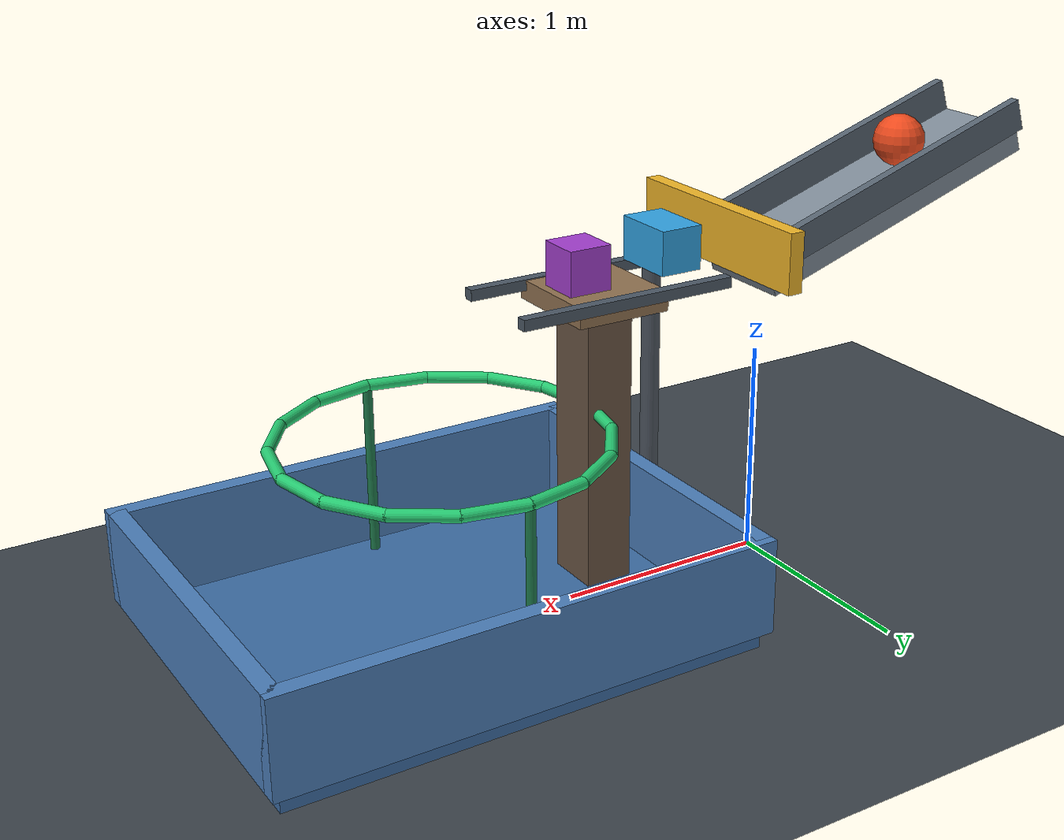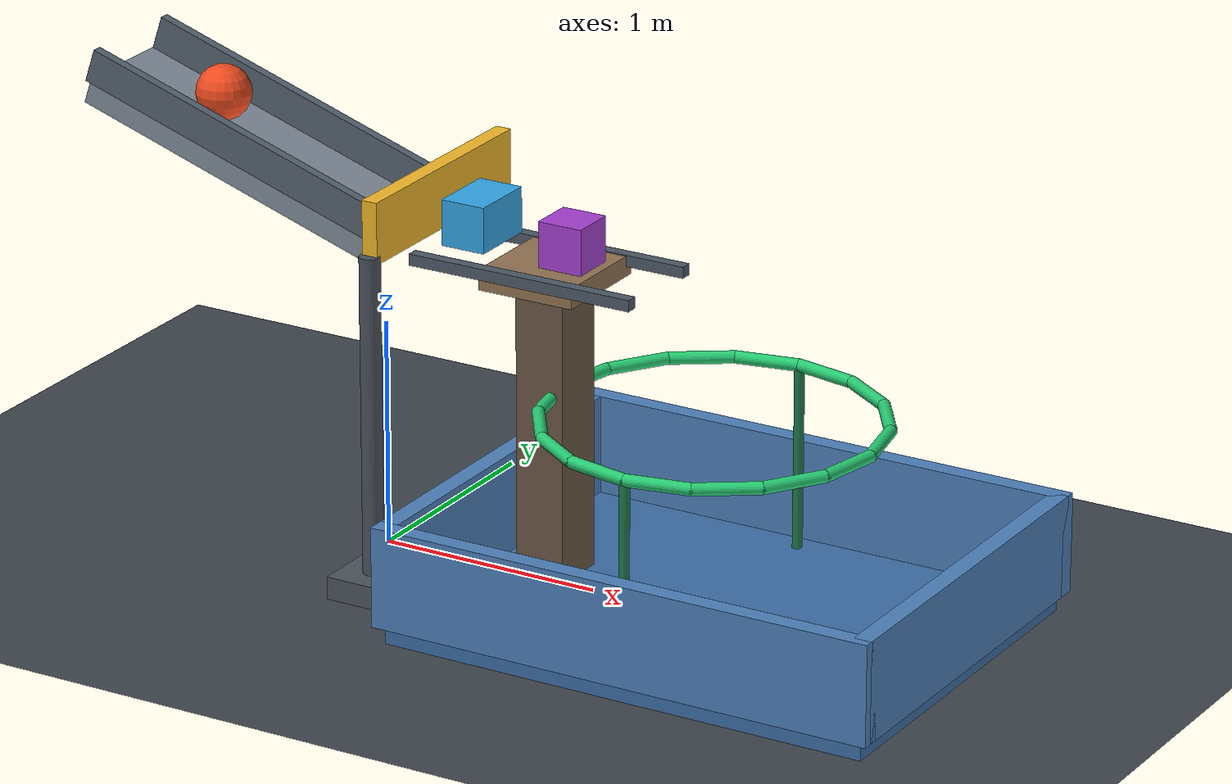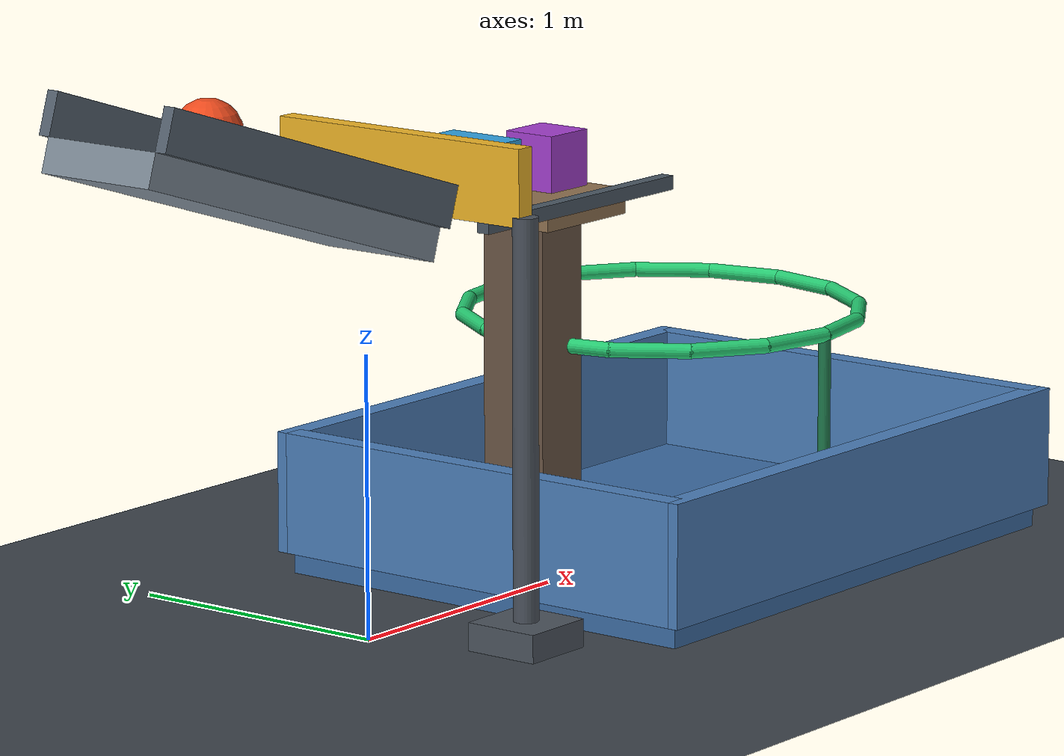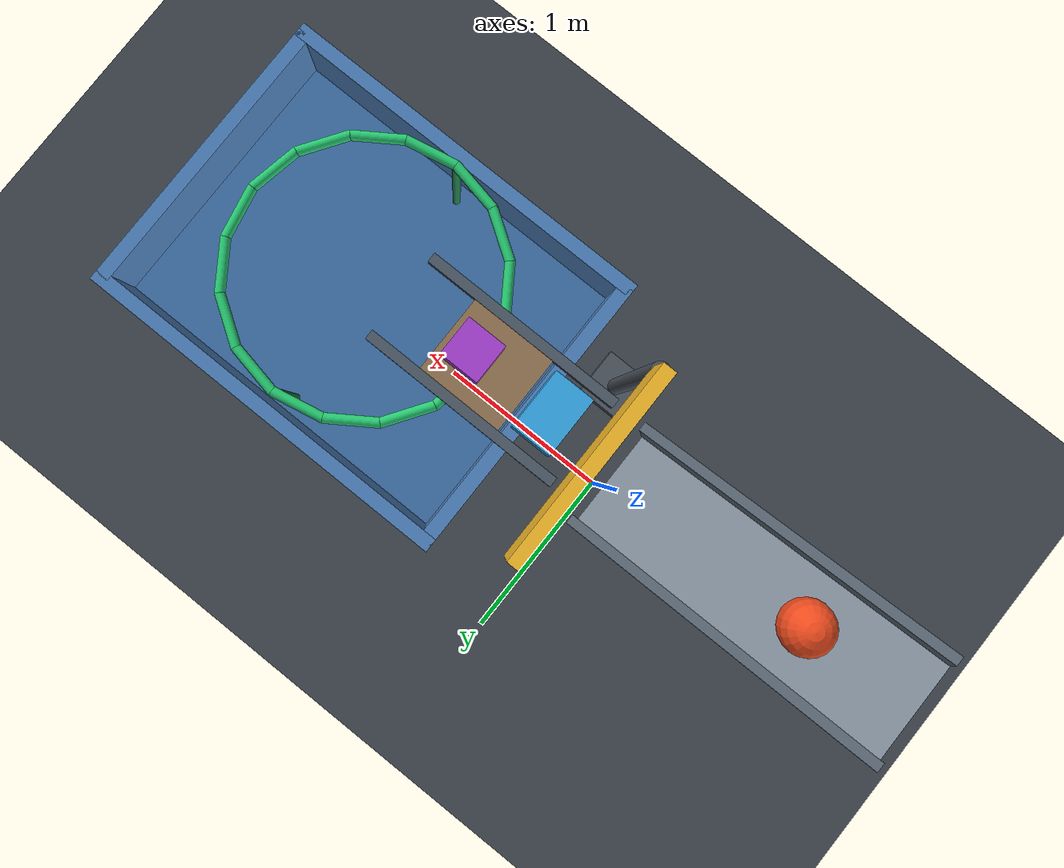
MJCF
<mujoco model="ball_paddle_slider_drop">
  <compiler angle="radian" autolimits="true"/>
  <option timestep="0.002" gravity="0 0 -9.81" integrator="implicitfast" iterations="80"/>
  <size njmax="1500" nconmax="300"/>
  <visual>
    <headlight ambient="0.35 0.35 0.35" diffuse="0.75 0.75 0.75" specular="0.15 0.15 0.15"/>
  </visual>

  <worldbody>
    <light name="overhead" pos="0 -2 5" dir="0 0 -1" diffuse="0.8 0.8 0.8"/>
    <camera name="overview" pos="4 -6 3.8" xyaxes="0.857 0.514 0 -0.220 0.366 0.904"/>

    <geom name="floor" type="plane" size="8 5 0.1" friction="1.0 0.02 0.08" condim="6" priority="1" solref="0.012 1" rgba="0.24 0.27 0.30 1"/>

    <!-- The ball's starting contact point is one metre uphill from the ramp's lower end. -->
    <body name="ramp" pos="-0.593292 0 1.681763" quat="0.987688341 0 0.156434465 0">
      <geom name="ramp_surface" type="box" pos="0 0 -0.06" size="0.75 0.23 0.06" friction="0.7 0.005 0.0002" condim="6" priority="2" solref="0.01 1" rgba="0.50 0.55 0.60 1"/>
      <geom name="ramp_rail_left" type="box" pos="0 0.25 0.075" size="0.75 0.022 0.075" friction="0.4 0.005 0.0002" condim="6" priority="2" rgba="0.34 0.39 0.44 1"/>
      <geom name="ramp_rail_right" type="box" pos="0 -0.25 0.075" size="0.75 0.022 0.075" friction="0.4 0.005 0.0002" condim="6" priority="2" rgba="0.34 0.39 0.44 1"/>
    </body>

    <body name="ball" pos="-0.793975 0 1.873144">
      <freejoint name="ball_free"/>
      <geom name="ball_geom" type="sphere" size="0.12" mass="3" friction="0.7 0.015 0.06" condim="6" solref="0.01 1" rgba="0.95 0.30 0.12 1"/>
    </body>

    <body name="paddle_support" pos="0.24 -0.5 0.75">
      <geom name="paddle_support_post" type="cylinder" size="0.045 0.75" contype="0" conaffinity="0" rgba="0.30 0.33 0.37 1"/>
      <geom name="paddle_support_base" type="box" pos="0 0 -0.70" size="0.14 0.14 0.05" contype="0" conaffinity="0" rgba="0.30 0.33 0.37 1"/>
    </body>

    <body name="paddle" pos="0.24 -0.5 1.60">
      <joint name="paddle_hinge" type="hinge" axis="0 0 1" range="-1.42 0.02" damping="0.06" frictionloss="0.01" armature="0.002"/>
      <geom name="paddle_blade" type="box" pos="0 0.525 0" size="0.035 0.525 0.135" mass="0.8" friction="0.3 0.005 0.001" condim="6" priority="1" solref="0.008 1" rgba="0.95 0.72 0.16 1"/>
    </body>

    <body name="slider_guide" pos="0.82 -0.05 1.43">
      <geom name="slider_guide_left" type="box" pos="0 0.22 0" size="0.52 0.025 0.025" contype="0" conaffinity="0" rgba="0.30 0.35 0.40 1"/>
      <geom name="slider_guide_right" type="box" pos="0 -0.22 0" size="0.52 0.025 0.025" contype="0" conaffinity="0" rgba="0.30 0.35 0.40 1"/>
    </body>

    <body name="slider" pos="0.50 -0.05 1.58">
      <joint name="slider_slide" type="slide" axis="1 0 0" range="0 0.65" damping="1.2" frictionloss="0.015" armature="0.01"/>
      <geom name="slider_striker" type="box" size="0.10 0.15 0.10" mass="0.30" friction="0.25 0.005 0.001" condim="6" solref="0.008 1" rgba="0.20 0.65 0.90 1"/>
    </body>

    <body name="ledge" pos="0.85 -0.05 0">
      <geom name="ledge_platform" type="box" pos="0 0 1.405" size="0.22 0.24 0.045" friction="0.18 0.005 0.001" condim="6" priority="1" solref="0.01 1" rgba="0.57 0.45 0.32 1"/>
      <geom name="ledge_pedestal" type="box" pos="0 0 0.68" size="0.11 0.13 0.68" friction="0.6 0.01 0.02" rgba="0.42 0.34 0.27 1"/>
    </body>

    <body name="block" pos="0.93 -0.05 1.55">
      <freejoint name="block_free"/>
      <geom name="block_geom" type="box" size="0.10 0.10 0.10" mass="0.18" friction="0.6 0.02 0.02" condim="6" solref="0.008 1" rgba="0.65 0.25 0.82 1"/>
    </body>

    <!-- A horizontal hoop assembled entirely from primitive capsules. -->
    <body name="hoop" pos="1.60 -0.05 0.90">
      <geom name="hoop_ring_01" type="capsule" fromto="0.720000 0 0 0.665193 0.275532 0" size="0.027" rgba="0.15 0.80 0.45 1"/>
      <geom name="hoop_ring_02" type="capsule" fromto="0.665193 0.275532 0 0.509117 0.509117 0" size="0.027" rgba="0.15 0.80 0.45 1"/>
      <geom name="hoop_ring_03" type="capsule" fromto="0.509117 0.509117 0 0.275532 0.665193 0" size="0.027" rgba="0.15 0.80 0.45 1"/>
      <geom name="hoop_ring_04" type="capsule" fromto="0.275532 0.665193 0 0 0.720000 0" size="0.027" rgba="0.15 0.80 0.45 1"/>
      <geom name="hoop_ring_05" type="capsule" fromto="0 0.720000 0 -0.275532 0.665193 0" size="0.027" rgba="0.15 0.80 0.45 1"/>
      <geom name="hoop_ring_06" type="capsule" fromto="-0.275532 0.665193 0 -0.509117 0.509117 0" size="0.027" rgba="0.15 0.80 0.45 1"/>
      <geom name="hoop_ring_07" type="capsule" fromto="-0.509117 0.509117 0 -0.665193 0.275532 0" size="0.027" rgba="0.15 0.80 0.45 1"/>
      <geom name="hoop_ring_08" type="capsule" fromto="-0.665193 0.275532 0 -0.720000 0 0" size="0.027" rgba="0.15 0.80 0.45 1"/>
      <geom name="hoop_ring_09" type="capsule" fromto="-0.720000 0 0 -0.665193 -0.275532 0" size="0.027" rgba="0.15 0.80 0.45 1"/>
      <geom name="hoop_ring_10" type="capsule" fromto="-0.665193 -0.275532 0 -0.509117 -0.509117 0" size="0.027" rgba="0.15 0.80 0.45 1"/>
      <geom name="hoop_ring_11" type="capsule" fromto="-0.509117 -0.509117 0 -0.275532 -0.665193 0" size="0.027" rgba="0.15 0.80 0.45 1"/>
      <geom name="hoop_ring_12" type="capsule" fromto="-0.275532 -0.665193 0 0 -0.720000 0" size="0.027" rgba="0.15 0.80 0.45 1"/>
      <geom name="hoop_ring_13" type="capsule" fromto="0 -0.720000 0 0.275532 -0.665193 0" size="0.027" rgba="0.15 0.80 0.45 1"/>
      <geom name="hoop_ring_14" type="capsule" fromto="0.275532 -0.665193 0 0.509117 -0.509117 0" size="0.027" rgba="0.15 0.80 0.45 1"/>
      <geom name="hoop_ring_15" type="capsule" fromto="0.509117 -0.509117 0 0.665193 -0.275532 0" size="0.027" rgba="0.15 0.80 0.45 1"/>
      <geom name="hoop_ring_16" type="capsule" fromto="0.665193 -0.275532 0 0.720000 0 0" size="0.027" rgba="0.15 0.80 0.45 1"/>
      <geom name="hoop_support_left" type="capsule" fromto="0 0.72 -0.82 0 0.72 0" size="0.022" rgba="0.12 0.48 0.30 1"/>
      <geom name="hoop_support_right" type="capsule" fromto="0 -0.72 -0.82 0 -0.72 0" size="0.022" rgba="0.12 0.48 0.30 1"/>
    </body>

    <body name="box" pos="1.65 -0.05 0">
      <geom name="box_bottom" type="box" pos="0 0 0.04" size="1.10 0.85 0.04" friction="1.2 0.03 0.08" condim="6" priority="1" solref="0.008 1" rgba="0.24 0.43 0.65 1"/>
      <geom name="box_wall_low_x" type="box" pos="-1.10 0 0.30" size="0.04 0.85 0.22" friction="0.9 0.02 0.04" condim="6" priority="1" solref="0.008 1" rgba="0.30 0.50 0.73 1"/>
      <geom name="box_wall_high_x" type="box" pos="1.10 0 0.30" size="0.04 0.85 0.22" friction="0.9 0.02 0.04" condim="6" priority="1" solref="0.008 1" rgba="0.30 0.50 0.73 1"/>
      <geom name="box_wall_low_y" type="box" pos="0 -0.85 0.30" size="1.14 0.04 0.22" friction="0.9 0.02 0.04" condim="6" priority="1" solref="0.008 1" rgba="0.30 0.50 0.73 1"/>
      <geom name="box_wall_high_y" type="box" pos="0 0.85 0.30" size="1.14 0.04 0.22" friction="0.9 0.02 0.04" condim="6" priority="1" solref="0.008 1" rgba="0.30 0.50 0.73 1"/>
    </body>
  </worldbody>

  <keyframe>
    <key name="start" qpos="-0.793975 0 1.873144 1 0 0 0 0 0 0.93 -0.05 1.55 1 0 0 0"/>
  </keyframe>
</mujoco>
